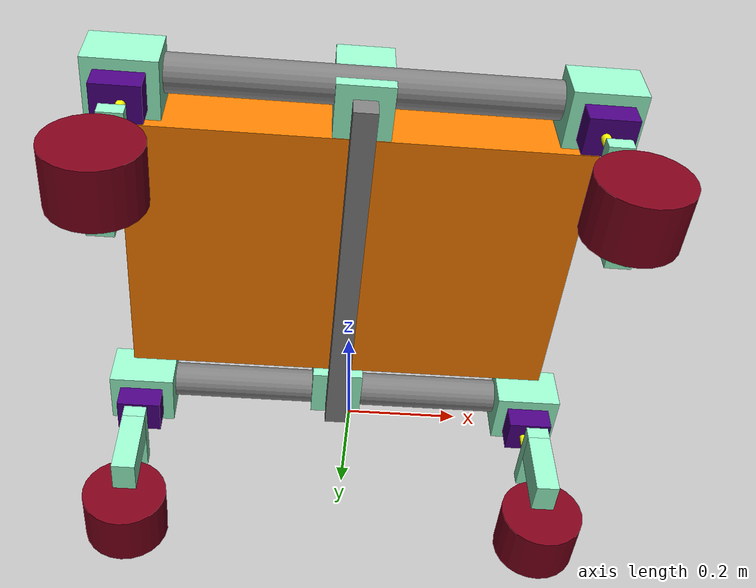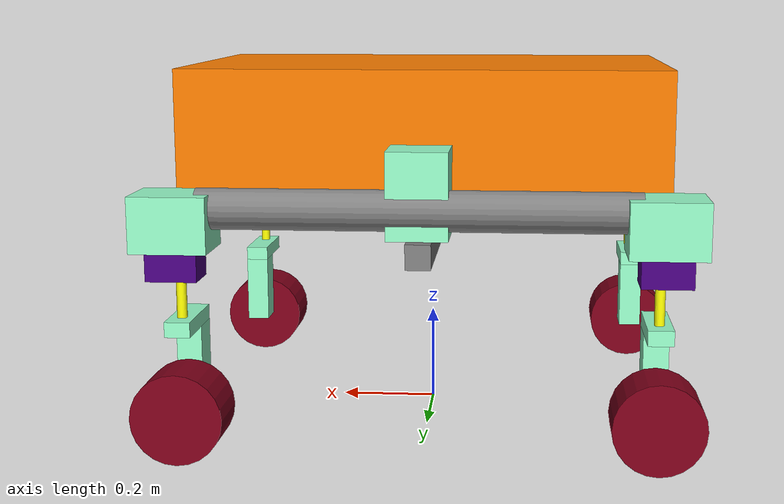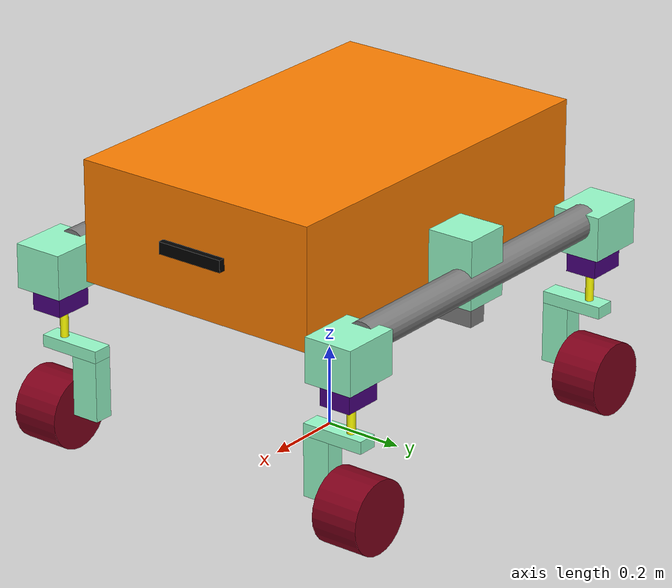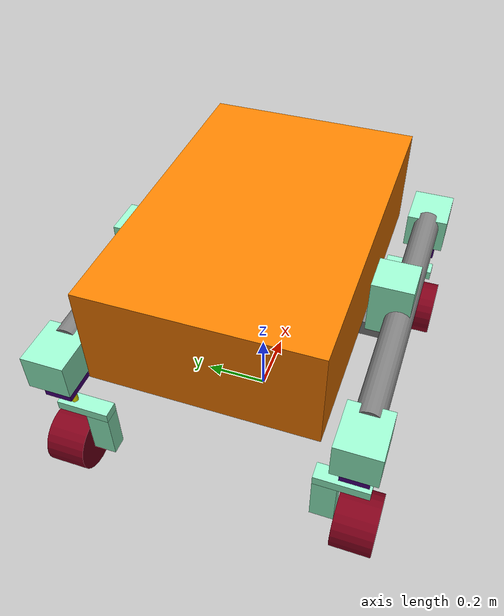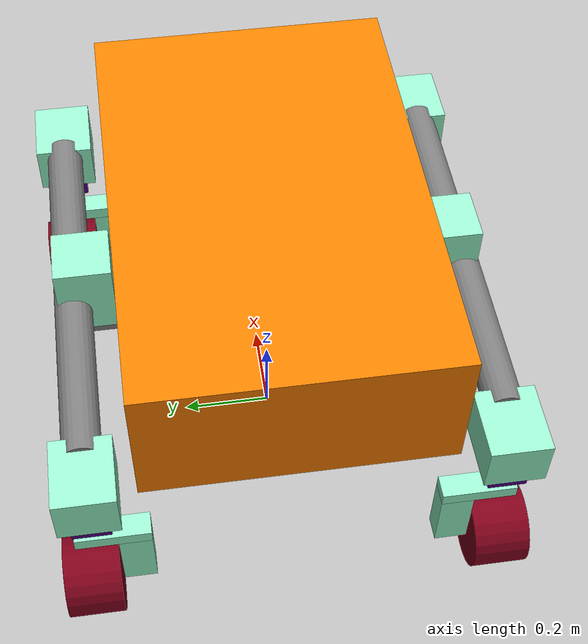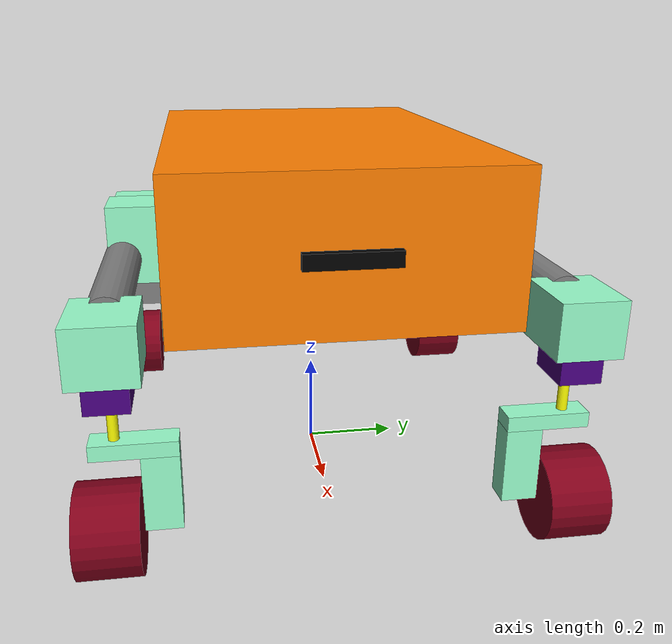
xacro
<?xml version="1.0"?>
<robot xmlns:xacro="http://www.ros.org/wiki/xacro" name="hubba">

    <material name="white">
        <color rgba="1 1 1 1"/>
    </material>
    <material name="yellow">
        <color rgba="1 1 0 1"/>
    </material>
    <material name="vine_red">
        <color rgba="0.5 0.0 0.1 1.0"/>
    </material>
    <material name="indigo">
        <color rgba="0.29 0.0 0.51 1.0"/>
    </material>
    <material name="metallic_grey">
        <color rgba="0.5 0.5 0.5 1.0"/>
    </material>
    <material name="transparent_black">
        <color rgba="1.0 0.5 0.0 1.0"/>
    </material>
    <material name="mint_green">
        <color rgba="0.6 1.0 0.8 1.0"/>
    </material>
    <material name="black">
        <color rgba="0 0 0 1"/>
    </material>

<link name="base_footprint"/>

    <joint name="base_footprint_to_base_link" type="fixed">
        <parent link="base_footprint"/>
        <child link="base_link"/>
        <origin xyz="0 0 0.0" rpy="0 0 ${-pi/2}"/>
    </joint>
<!-- ${pi/2} -->
    <link name="base_link">
        <visual>
            <geometry><box size="0.64 0.98 0.3" /></geometry>
            <origin xyz="0 0 0.60" rpy="0 0 0" />
            <material name="transparent_black" />
        </visual>
        <collision>
            <geometry><box size="0.64 0.98 0.3" /></geometry>
            <origin xyz="0 0 0.60" rpy="0 0 0" />
        </collision>
        <inertial>
            <mass value="56.0"/>
            <origin xyz="0 0 0.60" rpy="0 0 0"/>
            <inertia ixx="4.91" ixy="0" ixz="0" iyy="2.33" iyz="0" izz="6.40"/>
        </inertial>
    </link>
    <gazebo reference="base_link">
        <material>Gazebo/Orange</material> </gazebo>

    <link name="diff_bar">
        <visual>
            <geometry><box size="0.05 0.85 0.05" /></geometry>
            <origin xyz="0 0 0" rpy="0 0 0" />
            <material name="metallic_grey" />
        </visual>
        <collision>
            <geometry><box size="0.05 0.85 0.05" /></geometry>
            <origin xyz="0 0 0" rpy="0 0 0" />
        </collision>
        <inertial>
            <mass value="0.5"/>
            <inertia ixx="0.03" ixy="0" ixz="0" iyy="0.001" iyz="0" izz="0.03"/>
        </inertial>
    </link>
    <gazebo reference="diff_bar"><material>Gazebo/Grey</material></gazebo>

    <joint name="base_to_diff_bar" type="revolute">
        <parent link="base_link"/>
        <child link="diff_bar"/>
        <origin xyz="0 0 0.40" rpy="0 0 ${pi/2}"/>
        <axis xyz="0 1 0"/>
        <limit lower="-0.25" upper="0.25" effort="100" velocity="1.0"/>
        <mimic joint="base_to_sag_legmil" multiplier="-0.5" offset="0"/>
    </joint>

    <xacro:macro name="wheel_assembly" params="prefix suffix parent_link reflect_x reflect_y">
        <link name="${prefix}_${suffix}_kutu">
            <visual>
                <geometry><box size="0.125 0.15 0.11" /></geometry>
                <material name="mint_green" />
            </visual>
            <collision>
                <geometry><box size="0.125 0.15 0.11" /></geometry>
            </collision>
            <inertial>
                <mass value="0.5"/>
                <inertia ixx="0.002" ixy="0" ixz="0" iyy="0.002" iyz="0" izz="0.002"/>
            </inertial>
        </link>

        <link name="${prefix}_${suffix}_gearbox">
            <visual>
                <geometry><box size="0.08 0.10 0.055" /></geometry>
                <material name="indigo" />
            </visual>
            <collision>
                 <geometry><box size="0.08 0.10 0.055" /></geometry>
            </collision>
            <inertial>
                <mass value="0.5"/>
                <inertia ixx="0.001" ixy="0" ixz="0" iyy="0.001" iyz="0" izz="0.001"/>
            </inertial>
        </link>

        <link name="${prefix}_${suffix}_mil">
            <visual>
                <geometry><cylinder radius="0.01" length="0.12"/></geometry>
                <origin xyz="0 0 0" rpy="0 0 ${pi/2}" />
                <material name="yellow" />
            </visual>
            <collision>
                <geometry><cylinder radius="0.01" length="0.12"/></geometry>
                <origin xyz="0 0 0" rpy="0 0 ${pi/2}" />
            </collision>
            <inertial>
                <mass value="0.2"/>
                <inertia ixx="0.001" ixy="0" ixz="0" iyy="0.001" iyz="0" izz="0.001"/>
            </inertial>
        </link>

        <link name="${prefix}_${suffix}_steering">
            <visual>
                <geometry><box size="0.16 0.05 0.03" /></geometry>
                <material name="mint_green" />
            </visual>
            <collision>
                <geometry><box size="0.16 0.05 0.03" /></geometry>
            </collision>
            <inertial>
                <mass value="0.2"/>
                <inertia ixx="0.001" ixy="0" ixz="0" iyy="0.001" iyz="0" izz="0.001"/>
            </inertial>
        </link>

        <link name="${prefix}_${suffix}_drive_prf">
            <visual>
                <geometry><box size="0.07 0.05 0.15" /></geometry>
                <material name="mint_green" />
            </visual>
            <collision>
                <geometry><box size="0.07 0.05 0.15" /></geometry>
            </collision>
            <inertial>
                <mass value="0.5"/>
                <inertia ixx="0.002" ixy="0" ixz="0" iyy="0.002" iyz="0" izz="0.002"/>
            </inertial>
        </link>

        <link name="${prefix}_${suffix}_wheel">
            <visual>
                <geometry><cylinder radius="0.09" length="0.12"/></geometry>
                <origin xyz="0 0 0" rpy="0 ${pi/2} 0" />
                <material name="vine_red" />
            </visual>
            <collision>
                <geometry><cylinder radius="0.09" length="0.12"/></geometry>
                <origin xyz="0 0 0" rpy="0 ${pi/2} 0" />
            </collision>
            <inertial>
                <mass value="3.0"/>
                <origin xyz="0 0 0" rpy="0 ${pi/2} 0"/>
                <inertia ixx="0.05" ixy="0" ixz="0" iyy="0.05" iyz="0" izz="0.05"/>
            </inertial>
        </link>

        <gazebo reference="${prefix}_${suffix}_wheel">
            <material>Gazebo/Red</material>
            <mu1>0.8</mu1>
            <mu2>0.3</mu2>
            <fdir1>0 1 0</fdir1>
            <kp>200000.0</kp>
            <kd>1000.0</kd>
        </gazebo>

        <joint name="${parent_link}_to_${prefix}_${suffix}_kutu" type="fixed">
            <parent link="${parent_link}"/>
            <child link="${prefix}_${suffix}_kutu"/>
            <origin xyz="0 ${0.47 * reflect_x} -0.025" rpy="0 0 0"/>
        </joint>

        <joint name="${prefix}_${suffix}_kutu_to_gearbox" type="fixed">
            <parent link="${prefix}_${suffix}_kutu"/>
            <child link="${prefix}_${suffix}_gearbox"/>
            <origin xyz="0 0 -0.085" rpy="0 0 0"/>
        </joint>

        <!-- Direksiyon eklemi fixed yapildi (Tekerlekler aci almaz) -->
        <joint name="${prefix}_${suffix}_gearbox_to_mil" type="fixed">
            <parent link="${prefix}_${suffix}_gearbox"/>
            <child link="${prefix}_${suffix}_mil"/>
            <origin xyz="0 ${-0.01 * reflect_x} -0.06" rpy="0 0 0"/>
        </joint>

        <joint name="${prefix}_${suffix}_mil_to_steering" type="fixed">
            <parent link="${prefix}_${suffix}_mil"/>
            <child link="${prefix}_${suffix}_steering"/>
            <origin xyz="${-0.035 * reflect_y} 0 -0.06" rpy="0 0 0"/>
        </joint>

        <joint name="${prefix}_${suffix}_steering_to_drive" type="fixed">
            <parent link="${prefix}_${suffix}_steering"/>
            <child link="${prefix}_${suffix}_drive_prf"/>
            <origin xyz="${-0.045 * reflect_y} 0 -0.09" rpy="0 0 0"/>
        </joint>

        <joint name="${prefix}_${suffix}_drive_to_wheel" type="continuous">
            <parent link="${prefix}_${suffix}_drive_prf"/>
            <child link="${prefix}_${suffix}_wheel"/>
            <axis xyz="1 0 0"/>
            <origin xyz="${0.10 * reflect_y} 0 -0.08" rpy="0 0 0"/>
        </joint>
    </xacro:macro>

    <xacro:macro name="rover_leg" params="prefix reflect_y">
        <link name="${prefix}_legmil">
            <visual>
                <geometry><cylinder radius="0.03" length="0.1"/></geometry>
                <origin xyz="0 0 0" rpy="0 ${pi/2} 0" />
                <material name="white" />
            </visual>
            <collision>
                <geometry><cylinder radius="0.03" length="0.1"/></geometry>
                <origin xyz="0 0 0" rpy="0 ${pi/2} 0" />
            </collision>
            <inertial>
                <mass value="1.0"/>
                <inertia ixx="0.01" ixy="0" ixz="0" iyy="0.01" iyz="0" izz="0.01"/>
            </inertial>
        </link>

        <link name="${prefix}_prfleg">
            <visual>
                <geometry><box size="0.12 0.12 0.17" /></geometry>
                <material name="mint_green" />
            </visual>
            <collision>
                <geometry><box size="0.12 0.12 0.17" /></geometry>
            </collision>
            <inertial>
                <mass value="1.0"/>
                <inertia ixx="0.01" ixy="0" ixz="0" iyy="0.01" iyz="0" izz="0.01"/>
            </inertial>
        </link>

        <link name="${prefix}_bacak">
            <visual>
                <geometry><cylinder radius="0.04" length="0.85"/></geometry>
                <origin xyz="0 0 0" rpy="${pi/2} 0 0" />
                <material name="metallic_grey" />
            </visual>
            <collision>
                <geometry><cylinder radius="0.04" length="0.85"/></geometry>
                <origin xyz="0 0 0" rpy="${pi/2} 0 0" />
            </collision>
             <inertial>
                <mass value="3.0"/>
                <inertia ixx="0.1" ixy="0" ixz="0" iyy="0.1" iyz="0" izz="0.1"/>
            </inertial>
        </link>

        <!-- Rocker-bogie bacak eklemi sertlestirildi -->
        <joint name="base_to_${prefix}_legmil" type="revolute">
            <parent link="base_link"/>
            <child link="${prefix}_legmil"/>
            <origin xyz="${0.39 * reflect_y} 0 0.57" rpy="0 0 0"/>
            <axis xyz="1 0 0"/>
            <limit lower="-0.25" upper="0.25" effort="1000" velocity="1.0"/>
            <dynamics damping="5.0" friction="1.0"/>
        </joint>

        <gazebo reference="base_to_${prefix}_legmil">
            <springStiffness>800.0</springStiffness>
            <springReference>0.0</springReference>
            <implicitSpringDamper>true</implicitSpringDamper>
        </gazebo>

        <joint name="${prefix}_legmil_to_prf" type="fixed">
            <parent link="${prefix}_legmil"/>
            <child link="${prefix}_prfleg"/>
            <origin xyz="0 0 -0.05" rpy="0 0 0"/>
        </joint>

        <joint name="${prefix}_prf_to_bacak" type="fixed">
            <parent link="${prefix}_prfleg"/>
            <child link="${prefix}_bacak"/>
            <origin xyz="${0.03 * reflect_y} 0 -0.03" rpy="0 0 0"/>
        </joint>
    </xacro:macro>

    <xacro:rover_leg prefix="sag" reflect_y="1" />
    <xacro:wheel_assembly prefix="sag" suffix="on" parent_link="sag_bacak" reflect_x="1" reflect_y="1" />
    <xacro:wheel_assembly prefix="sag" suffix="arka" parent_link="sag_bacak" reflect_x="-1" reflect_y="1" />

    <xacro:rover_leg prefix="sol" reflect_y="-1" />
    <xacro:wheel_assembly prefix="sol" suffix="on" parent_link="sol_bacak" reflect_x="1" reflect_y="-1" />
    <xacro:wheel_assembly prefix="sol" suffix="arka" parent_link="sol_bacak" reflect_x="-1" reflect_y="-1" />

    <link name="zed2_camera_center">
        <visual>
            <geometry><box size="0.033 0.175 0.03" /></geometry>
            <material name="black"/>
        </visual>
        <collision>
            <geometry><box size="0.033 0.175 0.03" /></geometry>
        </collision>
        <inertial>
            <mass value="0.16"/>
            <inertia ixx="0.0001" ixy="0" ixz="0" iyy="0.0001" iyz="0" izz="0.0001"/>
        </inertial>
    </link>
    <gazebo reference="zed2_camera_center"><material>Gazebo/Black</material></gazebo>

    <joint name="base_to_zed2" type="fixed">
        <parent link="base_link"/>
        <child link="zed2_camera_center"/>
        <origin xyz="0 0.49 0.6" rpy="0 0 ${pi/2}"/>
    </joint>

    <link name="zed2_camera_optical_frame"/>

    <joint name="zed2_optical_joint" type="fixed">
        <parent link="zed2_camera_center"/>
        <child link="zed2_camera_optical_frame"/>
        <origin xyz="0 0 0" rpy="${-pi/2} 0 ${-pi/2}"/>
    </joint>

    <gazebo reference="zed2_camera_center">
        <sensor type="depth" name="zed2_sensor">
            <always_on>true</always_on>
            <update_rate>10.0</update_rate>
            <camera name="zed2">
                <horizontal_fov>1.91986</horizontal_fov>
                <image><width>640</width><height>360</height><format>R8G8B8</format></image>
                <clip><near>0.3</near><far>20.0</far></clip>
                <noise><type>gaussian</type><mean>0.0</mean><stddev>0.007</stddev></noise>
            </camera>
            <plugin name="zed2_camera_controller" filename="libgazebo_ros_camera.so">
                <ros>
                    <namespace>/zed2</namespace>
                    <remapping>image_raw:=image_raw</remapping>
                    <remapping>depth/image_raw:=depth/image_raw</remapping>
                    <remapping>camera_info:=camera_info</remapping>
                    <remapping>depth/camera_info:=depth/camera_info</remapping>
                    <remapping>points:=zed2_sensor/points</remapping>
                </ros>
                <frame_name>zed2_camera_optical_frame</frame_name>
                <hack_baseline>0.12</hack_baseline>
                <min_depth>0.3</min_depth>
                <max_depth>20.0</max_depth>
            </plugin>
        </sensor>
    </gazebo>

<gazebo>
        <plugin name="gazebo_ros_p3d" filename="libgazebo_ros_p3d.so">
            <ros><remapping>odom:=odom</remapping></ros>
            <body_name>base_footprint</body_name>
            <frame_name>odom</frame_name>
            <update_rate>30.0</update_rate>
            <xyz_offset>0 0 0</xyz_offset>
            <rpy_offset>0 0 0</rpy_offset>
            <gaussian_noise>0.0</gaussian_noise>
            <publish_tf>false</publish_tf>
        </plugin>
    </gazebo>

    <ros2_control name="GazeboSystem" type="system">
        <hardware>
            <plugin>gazebo_ros2_control/GazeboSystem</plugin>
        </hardware>

        <joint name="base_to_sag_legmil">
            <command_interface name="effort"/>
            <state_interface name="position"/>
            <state_interface name="velocity"/>
        </joint>
        <joint name="base_to_sol_legmil">
            <command_interface name="effort"/>
            <state_interface name="position"/>
            <state_interface name="velocity"/>
        </joint>

        <joint name="sol_on_drive_to_wheel">
            <command_interface name="velocity"/>
            <state_interface name="velocity"/>
            <state_interface name="position"/>
         </joint>
        <joint name="sag_on_drive_to_wheel">
            <command_interface name="velocity"/>
            <state_interface name="velocity"/>
            <state_interface name="position"/>
        </joint>
        <joint name="sol_arka_drive_to_wheel">
            <command_interface name="velocity"/>
            <state_interface name="velocity"/>
            <state_interface name="position"/>
        </joint>
        <joint name="sag_arka_drive_to_wheel">
            <command_interface name="velocity"/>
            <state_interface name="velocity"/>
            <state_interface name="position"/>
        </joint>
    </ros2_control>

    <gazebo>
        <plugin filename="libgazebo_ros2_control.so" name="gazebo_ros2_control">
            <parameters>$(find robot_2_description)/config/control.yaml</parameters>
        </plugin>
    </gazebo>

</robot>
